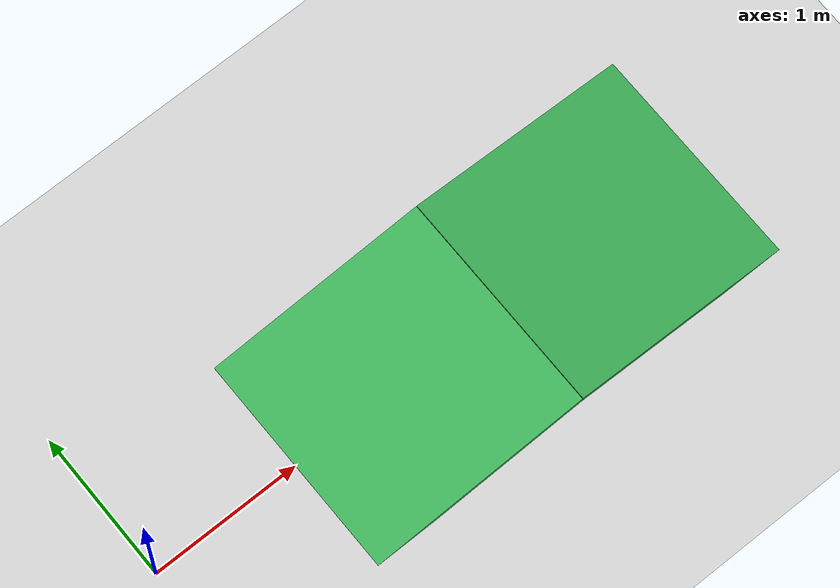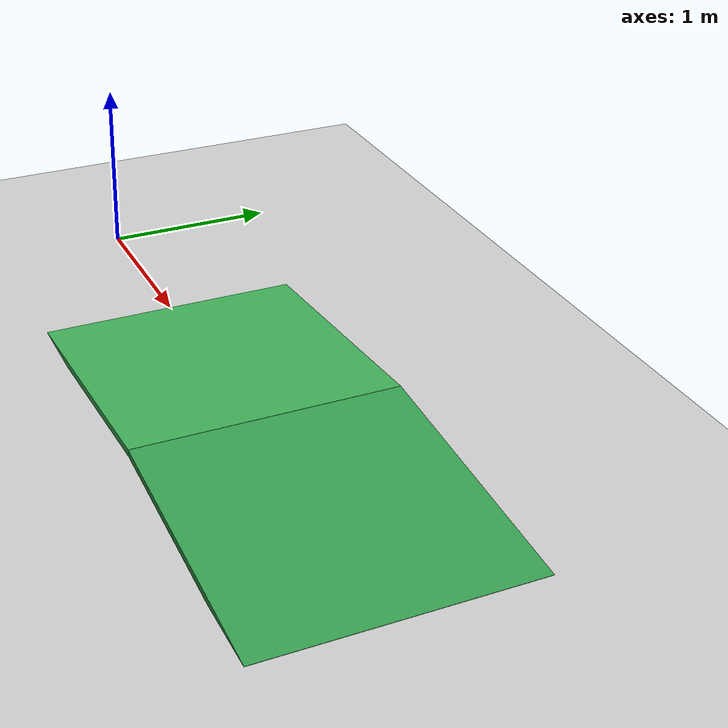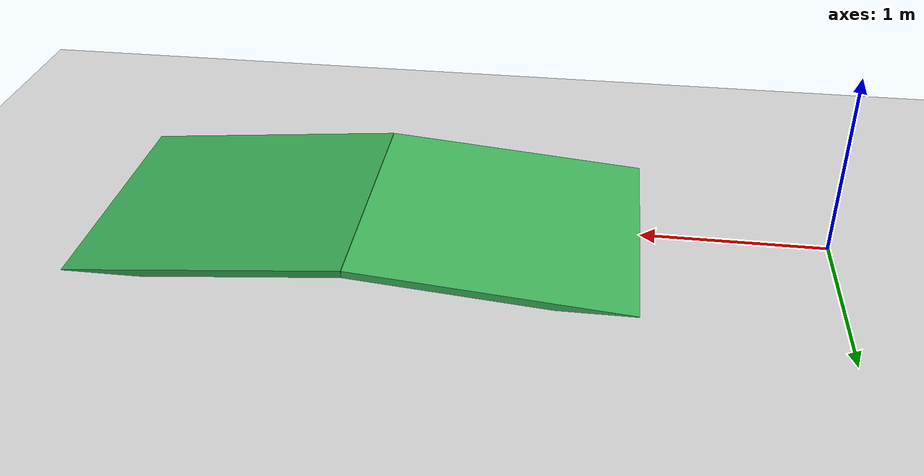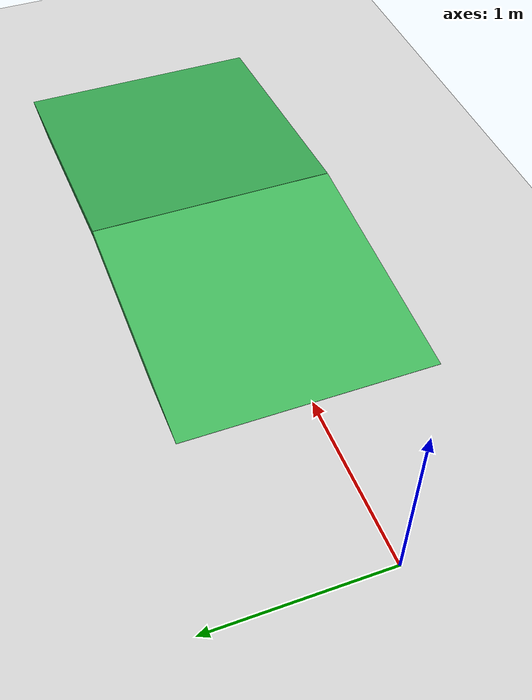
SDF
<?xml version="1.0"?>
<sdf version="1.6">
  <world name="ramp_5deg">
    <gravity>0 0 -9.81</gravity>
    <physics name="default_physics" default="0" type="ode">
      <max_step_size>0.001</max_step_size>
      <real_time_update_rate>1000</real_time_update_rate>
      <ode>
        <solver><type>quick</type><iters>100</iters><sor>1.3</sor><use_dynamic_moi_rescaling>true</use_dynamic_moi_rescaling></solver>
        <constraints><cfm>0.0</cfm><erp>0.2</erp><contact_max_correcting_vel>0.1</contact_max_correcting_vel><contact_surface_layer>0.001</contact_surface_layer></constraints>
      </ode>
    </physics>
    <include><uri>model://ground_plane</uri></include>
    <include><uri>model://sun</uri></include>
    <model name="ramp_5deg_up">
      <static>true</static><pose>1.7471 0.0 0.0455 0 -0.0872665 0</pose>
      <link name="link">
        <collision name="collision"><geometry><box><size>1.50 1.50 0.04</size></box></geometry></collision>
        <visual name="visual"><geometry><box><size>1.50 1.50 0.04</size></box></geometry><material><ambient>0.25 0.70 0.35 1</ambient></material></visual>
      </link>
    </model>
    <model name="ramp_5deg_down">
      <static>true</static><pose>3.2414 0.0 0.0455 0 0.0872665 0</pose>
      <link name="link">
        <collision name="collision"><geometry><box><size>1.50 1.50 0.04</size></box></geometry></collision>
        <visual name="visual"><geometry><box><size>1.50 1.50 0.04</size></box></geometry><material><ambient>0.20 0.62 0.30 1</ambient></material></visual>
      </link>
    </model>
  </world>
</sdf>
